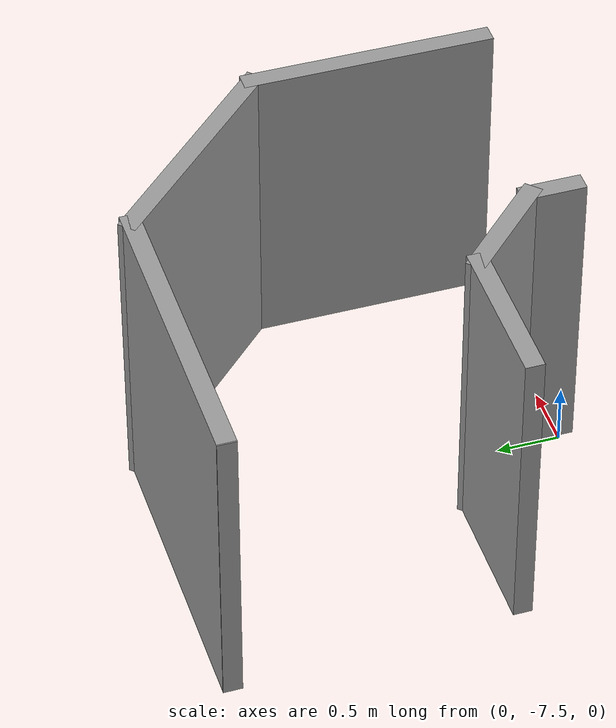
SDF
<?xml version='1.0'?>
<sdf version='1.7'>
  <model name='TurnsP'>
    <pose>0.159607 -3.81302 0 0 -0 0</pose>
    <link name='Wall_1'>
      <collision name='Wall_1_Collision'>
        <geometry>
          <box>
            <size>0.16 0.15 2.5</size>
          </box>
        </geometry>
        <pose>0 0 1.25 0 -0 0</pose>
      </collision>
      <visual name='Wall_1_Visual'>
        <pose>0 0 1.25 0 -0 0</pose>
        <geometry>
          <box>
            <size>0.16 0.15 2.5</size>
          </box>
        </geometry>
        <material>
          <script>
            <uri>file://media/materials/scripts/gazebo.material</uri>
            <name>Gazebo/Grey</name>
          </script>
          <ambient>1 1 1 1</ambient>
        </material>
        <meta>
          <layer>0</layer>
        </meta>
      </visual>
      <pose>-1.84461 -0.516979 0 0 -0 0</pose>
    </link>
    <link name='Wall_10'>
      <collision name='Wall_10_Collision'>
        <geometry>
          <box>
            <size>0.5 0.15 2.5</size>
          </box>
        </geometry>
        <pose>0 0 1.25 0 -0 0</pose>
      </collision>
      <visual name='Wall_10_Visual'>
        <pose>0 0 1.25 0 -0 0</pose>
        <geometry>
          <box>
            <size>0.5 0.15 2.5</size>
          </box>
        </geometry>
        <material>
          <script>
            <uri>file://media/materials/scripts/gazebo.material</uri>
            <name>Gazebo/Grey</name>
          </script>
          <ambient>1 1 1 1</ambient>
        </material>
        <meta>
          <layer>0</layer>
        </meta>
      </visual>
      <pose>-0.058566 -3.56302 0 0 -0 -1.5708</pose>
    </link>
    <link name='Wall_2'>
      <collision name='Wall_2_Collision'>
        <geometry>
          <box>
            <size>2.5 0.15 2.5</size>
          </box>
        </geometry>
        <pose>0 0 1.25 0 -0 0</pose>
      </collision>
      <visual name='Wall_2_Visual'>
        <pose>0 0 1.25 0 -0 0</pose>
        <geometry>
          <box>
            <size>2.5 0.15 2.5</size>
          </box>
        </geometry>
        <material>
          <script>
            <uri>file://media/materials/scripts/gazebo.material</uri>
            <name>Gazebo/Grey</name>
          </script>
          <ambient>1 1 1 1</ambient>
        </material>
        <meta>
          <layer>0</layer>
        </meta>
      </visual>
      <pose>-0.664607 -0.516979 0 0 -0 0</pose>
    </link>
    <link name='Wall_3'>
      <collision name='Wall_3_Collision'>
        <geometry>
          <box>
            <size>2 0.15 2.5</size>
          </box>
        </geometry>
        <pose>0 0 1.25 0 -0 0</pose>
      </collision>
      <visual name='Wall_3_Visual'>
        <pose>0 0 1.25 0 -0 0</pose>
        <geometry>
          <box>
            <size>2 0.15 2.5</size>
          </box>
        </geometry>
        <material>
          <script>
            <uri>file://media/materials/scripts/gazebo.material</uri>
            <name>Gazebo/Grey</name>
          </script>
          <ambient>1 1 1 1</ambient>
        </material>
        <meta>
          <layer>0</layer>
        </meta>
      </visual>
      <pose>1.16447 -1.17105 0 0 -0 -0.785398</pose>
    </link>
    <link name='Wall_4'>
      <collision name='Wall_4_Collision'>
        <geometry>
          <box>
            <size>2 0.15 2.5</size>
          </box>
        </geometry>
        <pose>0 0 1.25 0 -0 0</pose>
      </collision>
      <visual name='Wall_4_Visual'>
        <pose>0 0 1.25 0 -0 0</pose>
        <geometry>
          <box>
            <size>2 0.15 2.5</size>
          </box>
        </geometry>
        <material>
          <script>
            <uri>file://media/materials/scripts/gazebo.material</uri>
            <name>Gazebo/Grey</name>
          </script>
          <ambient>1 1 1 1</ambient>
        </material>
        <meta>
          <layer>0</layer>
        </meta>
      </visual>
      <pose>1.81854 -2.75013 0 0 -0 -1.5708</pose>
    </link>
    <link name='Wall_8'>
      <collision name='Wall_8_Collision'>
        <geometry>
          <box>
            <size>1.25 0.15 2.5</size>
          </box>
        </geometry>
        <pose>0 0 1.25 0 -0 0</pose>
      </collision>
      <visual name='Wall_8_Visual'>
        <pose>0 0 1.25 0 -0 0</pose>
        <geometry>
          <box>
            <size>1.25 0.15 2.5</size>
          </box>
        </geometry>
        <material>
          <script>
            <uri>file://media/materials/scripts/gazebo.material</uri>
            <name>Gazebo/Grey</name>
          </script>
          <ambient>1 1 1 1</ambient>
        </material>
        <meta>
          <layer>0</layer>
        </meta>
      </visual>
      <pose>-1.20961 -2.78698 0 0 -0 0</pose>
    </link>
    <link name='Wall_9'>
      <collision name='Wall_9_Collision'>
        <geometry>
          <box>
            <size>1 0.15 2.5</size>
          </box>
        </geometry>
        <pose>0 0 1.25 0 -0 0</pose>
      </collision>
      <visual name='Wall_9_Visual'>
        <pose>0 0 1.25 0 -0 0</pose>
        <geometry>
          <box>
            <size>1 0.15 2.5</size>
          </box>
        </geometry>
        <material>
          <script>
            <uri>file://media/materials/scripts/gazebo.material</uri>
            <name>Gazebo/Grey</name>
          </script>
          <ambient>1 1 1 1</ambient>
        </material>
        <meta>
          <layer>0</layer>
        </meta>
      </visual>
      <pose>-0.359086 -3.0875 0 0 -0 -0.785398</pose>
    </link>
    <static>1</static>
  </model>
</sdf>
